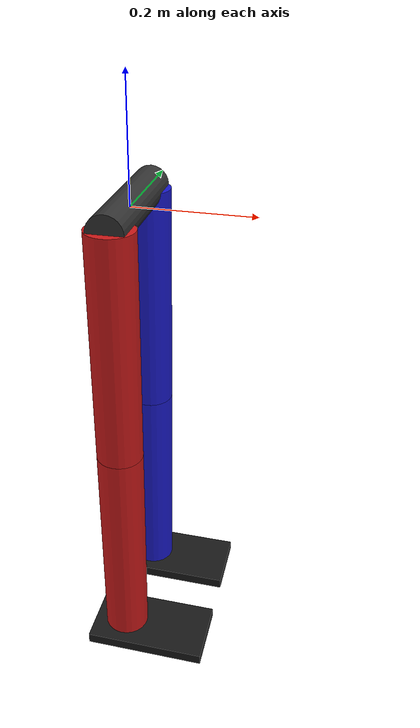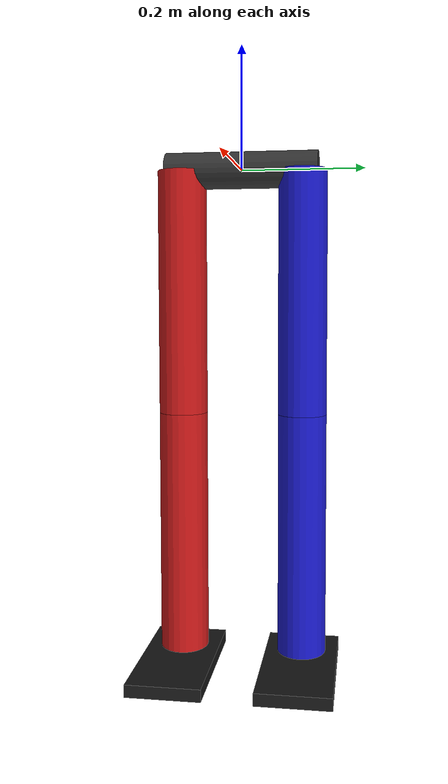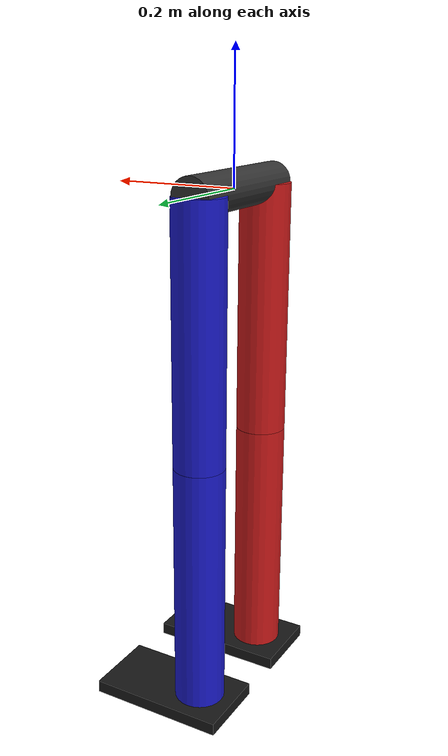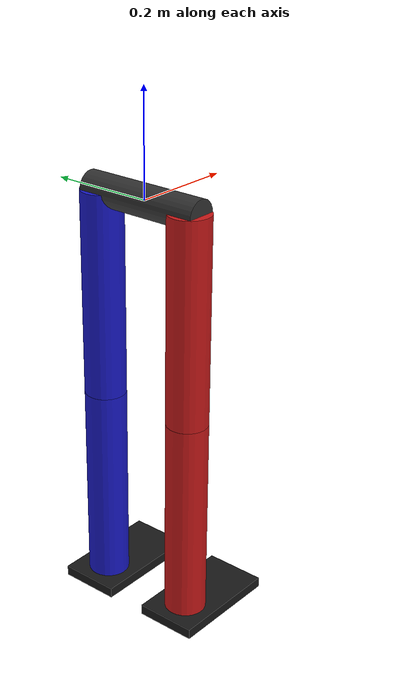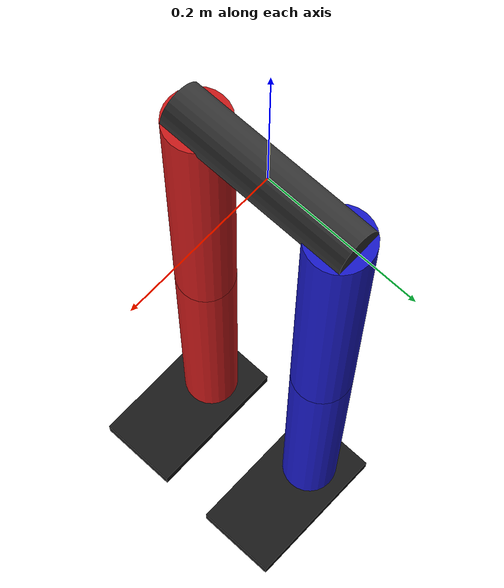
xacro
<?xml version="1.0"?>
<robot name="simple_biped" xmlns:xacro="http://www.ros.org/wiki/xacro">

  <xacro:property name="pelvis_len" value="0.25"/> <xacro:property name="pelvis_radius" value="0.03"/>
  <xacro:property name="pelvis_mass" value="0.5"/> <xacro:property name="thigh_len" value="0.40"/>
  <xacro:property name="shank_len" value="0.40"/>
  <xacro:property name="leg_radius" value="0.04"/> <xacro:property name="thigh_mass" value="4.0"/>
  <xacro:property name="shank_mass" value="3.0"/>
  <xacro:property name="small_link_mass" value="0.1"/> <xacro:property name="small_link_inertia" value="0.0001"/>

  <xacro:property name="foot_x" value="0.22"/> <xacro:property name="foot_y" value="0.12"/> <xacro:property name="foot_z" value="0.02"/> <xacro:property name="foot_mass" value="1.0"/>

  <xacro:property name="hip_y" value="0.10"/> <xacro:macro name="box_inertia" params="m x y z">
    <inertial>
      <mass value="${m}"/>
      <inertia ixx="${m*(y*y+z*z)/12}" ixy="0" ixz="0"
               iyy="${m*(x*x+z*z)/12}" iyz="0"
               izz="${m*(x*x+y*y)/12}"/>
    </inertial>
  </xacro:macro>

  <xacro:macro name="cyl_inertia" params="m r h origin_z">
    <inertial>
      <origin xyz="0 0 ${origin_z}"/>
      <mass value="${m}"/>
      <inertia ixx="${m*(3*r*r+h*h)/12}" ixy="0" ixz="0"
               iyy="${m*(3*r*r+h*h)/12}" iyz="0"
               izz="${m*r*r/2}"/>
    </inertial>
  </xacro:macro>

  <xacro:macro name="sphere_inertia" params="m r">
    <inertial>
      <mass value="${m}"/>
      <inertia ixx="${2*m*r*r/5}" ixy="0" ixz="0"
               iyy="${2*m*r*r/5}" iyz="0"
               izz="${2*m*r*r/5}"/>
    </inertial>
  </xacro:macro>

  <link name="torso">
    <visual>
      <origin xyz="0 0 0" rpy="1.5708 0 0"/>
      <geometry><cylinder radius="${pelvis_radius}" length="${pelvis_len}"/></geometry>
      <material name="grey"><color rgba="0.2 0.2 0.2 1.0"/></material>
    </visual>
    <collision>
      <origin xyz="0 0 0" rpy="1.5708 0 0"/>
      <geometry><cylinder radius="${pelvis_radius}" length="${pelvis_len}"/></geometry>
    </collision>
    <inertial>
        <mass value="${pelvis_mass}"/>
        <inertia ixx="0.01" ixy="0" ixz="0" iyy="0.01" iyz="0" izz="0.01"/>
    </inertial>
  </link>

  <link name="R_hip_roll_link">
    <inertial>
      <mass value="${small_link_mass}"/>
      <inertia ixx="${small_link_inertia}" iyy="${small_link_inertia}" izz="${small_link_inertia}" ixy="0" ixz="0" iyz="0"/>
    </inertial>
  </link>

  <joint name="R_hip_roll" type="revolute">
    <parent link="torso"/>
    <child link="R_hip_roll_link"/>
    <origin xyz="0 -${hip_y} 0"/>
    <axis xyz="1 0 0"/>
    <limit lower="-0.8" upper="0.5" effort="200" velocity="5.0"/>
    <dynamics damping="1.0" friction="0.5"/>
  </joint>

  <joint name="R_hip_pitch" type="revolute">
    <parent link="R_hip_roll_link"/>
    <child link="R_thigh"/>
    <axis xyz="0 1 0"/>
    <limit lower="1.5" upper="-1.5" effort="200" velocity="5.0"/>
    <dynamics damping="1.0" friction="0.5"/>
  </joint>

  <link name="R_thigh">
    <visual>
        <origin xyz="0 0 -${thigh_len/2}"/>
        <geometry><cylinder radius="${leg_radius}" length="${thigh_len}"/></geometry>
        <material name="red"><color rgba="0.8 0.1 0.1 1.0"/></material>
    </visual>
    <collision>
        <origin xyz="0 0 -${thigh_len/2}"/>
        <geometry><cylinder radius="${leg_radius}" length="${thigh_len}"/></geometry>
    </collision>
    <xacro:cyl_inertia m="${thigh_mass}" r="${leg_radius}" h="${thigh_len}" origin_z="-${thigh_len/2}"/>
  </link>

  <joint name="R_knee" type="revolute">
    <parent link="R_thigh"/>
    <child link="R_shank"/>
    <origin xyz="0 0 -${thigh_len}"/>
    <axis xyz="0 1 0"/>
    <limit lower="-2.6" upper="0" effort="300" velocity="5.0"/>
    <dynamics damping="1.0" friction="0.5"/>
  </joint>

  <link name="R_shank">
    <visual>
        <origin xyz="0 0 -${shank_len/2}"/>
        <geometry><cylinder radius="${leg_radius}" length="${shank_len}"/></geometry>
        <material name="red"><color rgba="0.8 0.1 0.1 1.0"/></material>
    </visual>
    <collision>
        <origin xyz="0 0 -${shank_len/2}"/>
        <geometry><cylinder radius="${leg_radius}" length="${shank_len}"/></geometry>
    </collision>
    <xacro:cyl_inertia m="${shank_mass}" r="${leg_radius}" h="${shank_len}" origin_z="-${shank_len/2}"/>
  </link>

  <link name="R_ankle_roll_link">
    <inertial>
      <mass value="${small_link_mass}"/>
      <inertia ixx="${small_link_inertia}" iyy="${small_link_inertia}" izz="${small_link_inertia}" ixy="0" ixz="0" iyz="0"/>
    </inertial>
  </link>

  <joint name="R_ankle_roll" type="revolute">
    <parent link="R_shank"/>
    <child link="R_ankle_roll_link"/>
    <origin xyz="0 0 -${shank_len}"/>
    <axis xyz="1 0 0"/>
    <limit lower="-0.5" upper="0.5" effort="100" velocity="5.0"/>
    <dynamics damping="0.5" friction="0.1"/>
  </joint>

  <joint name="R_ankle_pitch" type="revolute">
    <parent link="R_ankle_roll_link"/>
    <child link="R_foot"/>
    <axis xyz="0 1 0"/>
    <limit lower="-0.8" upper="0.8" effort="150" velocity="5.0"/>
    <dynamics damping="0.5" friction="0.1"/>
  </joint>

  <link name="R_foot">
    <visual>
        <origin xyz="0.05 0 -${foot_z/2}"/> <geometry><box size="${foot_x} ${foot_y} ${foot_z}"/></geometry>
        <material name="black"><color rgba="0.1 0.1 0.1 1.0"/></material>
    </visual>
    <collision>
        <origin xyz="0.05 0 -${foot_z/2}"/>
        <geometry><box size="${foot_x} ${foot_y} ${foot_z}"/></geometry>
    </collision>
    <xacro:box_inertia m="${foot_mass}" x="${foot_x}" y="${foot_y}" z="${foot_z}"/>
  </link>

  <link name="L_hip_roll_link">
    <inertial>
      <mass value="${small_link_mass}"/>
      <inertia ixx="${small_link_inertia}" iyy="${small_link_inertia}" izz="${small_link_inertia}" ixy="0" ixz="0" iyz="0"/>
    </inertial>
  </link>

  <joint name="L_hip_roll" type="revolute">
    <parent link="torso"/>
    <child link="L_hip_roll_link"/>
    <origin xyz="0 ${hip_y} 0"/>
    <axis xyz="1 0 0"/>
    <limit lower="-0.5" upper="0.8" effort="200" velocity="5.0"/>
    <dynamics damping="1.0" friction="0.5"/>
  </joint>

  <joint name="L_hip_pitch" type="revolute">
    <parent link="L_hip_roll_link"/>
    <child link="L_thigh"/>
    <axis xyz="0 1 0"/>
    <limit lower="1.5" upper="-1.5" effort="200" velocity="5.0"/>
    <dynamics damping="1.0" friction="0.5"/>
  </joint>

  <link name="L_thigh">
    <visual>
        <origin xyz="0 0 -${thigh_len/2}"/>
        <geometry><cylinder radius="${leg_radius}" length="${thigh_len}"/></geometry>
        <material name="blue"><color rgba="0.1 0.1 0.8 1.0"/></material>
    </visual>
    <collision>
        <origin xyz="0 0 -${thigh_len/2}"/>
        <geometry><cylinder radius="${leg_radius}" length="${thigh_len}"/></geometry>
    </collision>
    <xacro:cyl_inertia m="${thigh_mass}" r="${leg_radius}" h="${thigh_len}" origin_z="-${thigh_len/2}"/>
  </link>

  <joint name="L_knee" type="revolute">
    <parent link="L_thigh"/>
    <child link="L_shank"/>
    <origin xyz="0 0 -${thigh_len}"/>
    <axis xyz="0 1 0"/>
    <limit lower="-2.6" upper="0" effort="300" velocity="5.0"/>
    <dynamics damping="1.0" friction="0.5"/>
  </joint>

  <link name="L_shank">
    <visual>
        <origin xyz="0 0 -${shank_len/2}"/>
        <geometry><cylinder radius="${leg_radius}" length="${shank_len}"/></geometry>
        <material name="blue"><color rgba="0.1 0.1 0.8 1.0"/></material>
    </visual>
    <collision>
        <origin xyz="0 0 -${shank_len/2}"/>
        <geometry><cylinder radius="${leg_radius}" length="${shank_len}"/></geometry>
    </collision>
    <xacro:cyl_inertia m="${shank_mass}" r="${leg_radius}" h="${shank_len}" origin_z="-${shank_len/2}"/>
  </link>

  <link name="L_ankle_roll_link">
    <inertial>
      <mass value="${small_link_mass}"/>
      <inertia ixx="${small_link_inertia}" iyy="${small_link_inertia}" izz="${small_link_inertia}" ixy="0" ixz="0" iyz="0"/>
    </inertial>
  </link>

  <joint name="L_ankle_roll" type="revolute">
    <parent link="L_shank"/>
    <child link="L_ankle_roll_link"/>
    <origin xyz="0 0 -${shank_len}"/>
    <axis xyz="1 0 0"/>
    <limit lower="-0.5" upper="0.5" effort="100" velocity="5.0"/>
    <dynamics damping="0.5" friction="0.1"/>
  </joint>

  <joint name="L_ankle_pitch" type="revolute">
    <parent link="L_ankle_roll_link"/>
    <child link="L_foot"/>
    <axis xyz="0 1 0"/>
    <limit lower="-0.8" upper="0.8" effort="150" velocity="5.0"/>
    <dynamics damping="0.5" friction="0.1"/>
  </joint>

  <link name="L_foot">
    <visual>
        <origin xyz="0.05 0 -${foot_z/2}"/>
        <geometry><box size="${foot_x} ${foot_y} ${foot_z}"/></geometry>
        <material name="black"><color rgba="0.1 0.1 0.1 1.0"/></material>
    </visual>
    <collision>
        <origin xyz="0.05 0 -${foot_z/2}"/>
        <geometry><box size="${foot_x} ${foot_y} ${foot_z}"/></geometry>
    </collision>
    <xacro:box_inertia m="${foot_mass}" x="${foot_x}" y="${foot_y}" z="${foot_z}"/>
  </link>

  <gazebo reference="torso">
    <sensor name="imu_sensor" type="imu">
      <always_on>1</always_on>
      <update_rate>100</update_rate>
      <visualize>true</visualize>
      </sensor>
  </gazebo>

  <gazebo>
    <plugin filename="libignition-gazebo-imu-system.so"
            name="ignition::gazebo::systems::Imu">
    </plugin>
  </gazebo>

  <gazebo reference="L_foot">
    <surface>
      <friction>
        <ode><mu>2.2</mu><mu2>2.2</mu2></ode>
      </friction>
      <contact>
        <ode><kp>300000</kp><kd>50</kd><min_depth>0.001</min_depth></ode>
      </contact>
    </surface>
  </gazebo>

  <gazebo reference="R_foot">
    <surface>
      <friction>
        <ode><mu>2.2</mu><mu2>2.2</mu2></ode>
      </friction>
      <contact>
        <ode><kp>300000</kp><kd>50</kd><min_depth>0.001</min_depth></ode>
      </contact>
    </surface>
  </gazebo>

</robot>
